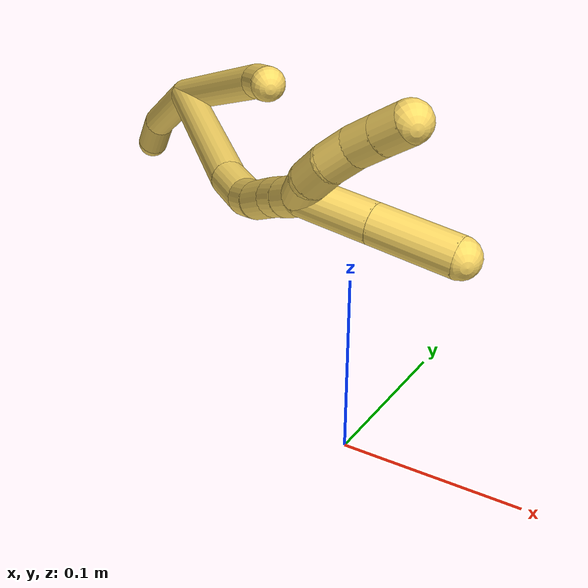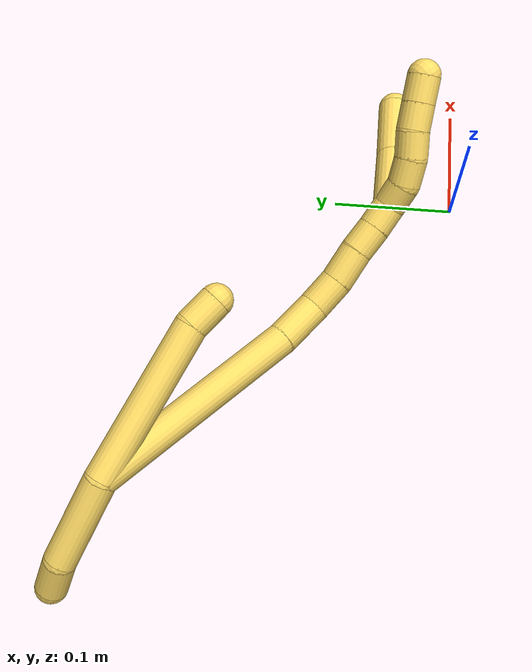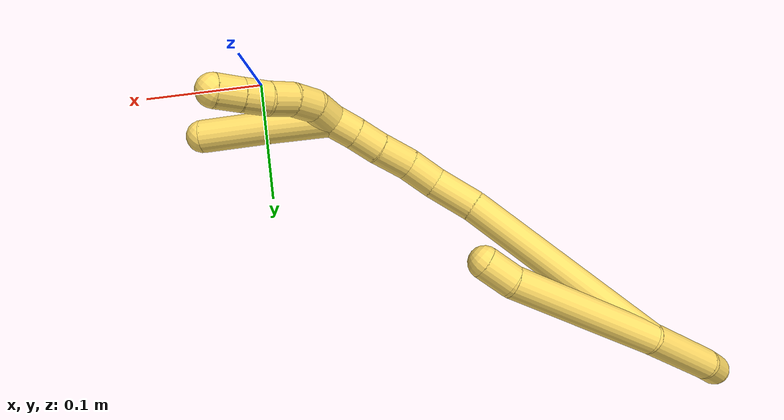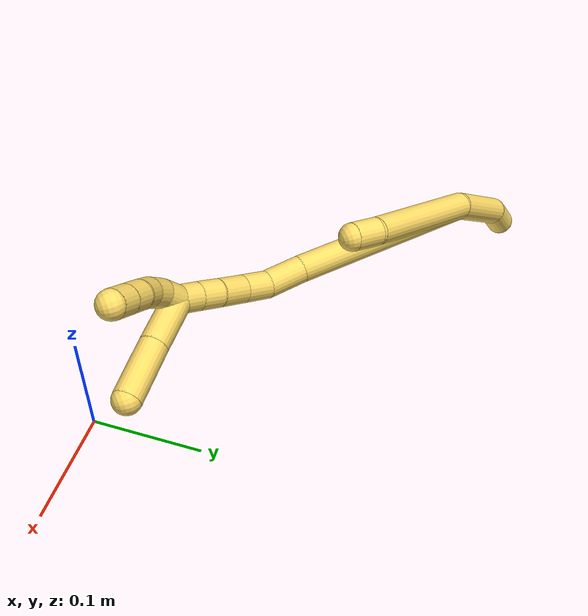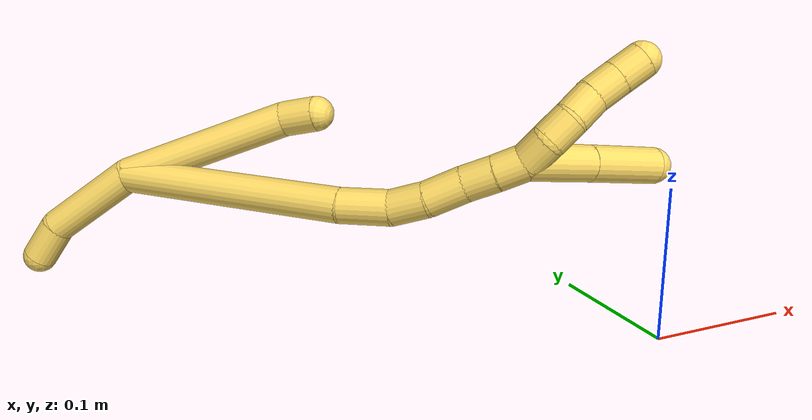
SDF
<sdf version="1.7">
 <world name="default">
  <model name="5">
   <static>0</static>
   <link name="5">
    <collision name="collision-cylinder-e_1_2_8">
     <pose>0.028881 0.011738 -0.05413 -2.92805 0.480636 -2.31698</pose>
     <geometry><cylinder><radius>0.0125</radius><length>0.124932</length></cylinder></geometry>
     <surface>
      <friction><ode><mu>1.16</mu><mu2>1.16</mu2><slip1>0</slip1><slip2>0</slip2></ode></friction>
      <contact><ode><kp>1e+06</kp><kd>1</kd><max_vel>0</max_vel><min_depth>0.001</min_depth></ode></contact>
     </surface>
    </collision>
    <visual name="visual-cylinder-e_1_2_8">
     <pose>0.028881 0.011738 -0.05413 -2.92805 0.480636 -2.31698</pose>
     <geometry><cylinder><radius>0.0125</radius><length>0.124932</length></cylinder></geometry>
     <material><ambient>1 0.858824 0.4 1</ambient></material>
    </visual>
    <collision name="collision-cylinder-e_2_8_6">
     <pose>0.061183 0.024006 -0.120307 -3.09767 0.276515 -2.82849</pose>
     <geometry><cylinder><radius>0.0125</radius><length>0.025068</length></cylinder></geometry>
     <surface>
      <friction><ode><mu>1.16</mu><mu2>1.16</mu2><slip1>0</slip1><slip2>0</slip2></ode></friction>
      <contact><ode><kp>1e+06</kp><kd>1</kd><max_vel>0</max_vel><min_depth>0.001</min_depth></ode></contact>
     </surface>
    </collision>
    <visual name="visual-cylinder-e_2_8_6">
     <pose>0.061183 0.024006 -0.120307 -3.09767 0.276515 -2.82849</pose>
     <geometry><cylinder><radius>0.0125</radius><length>0.025068</length></cylinder></geometry>
     <material><ambient>1 0.858824 0.4 1</ambient></material>
    </visual>
    <collision name="collision-cylinder-e_1_2_9">
     <pose>-0.023364 -0.002156 0.026361 0.081609 -0.723555 -0.030898</pose>
     <geometry><cylinder><radius>0.0125</radius><length>0.070581</length></cylinder></geometry>
     <surface>
      <friction><ode><mu>1.16</mu><mu2>1.16</mu2><slip1>0</slip1><slip2>0</slip2></ode></friction>
      <contact><ode><kp>1e+06</kp><kd>1</kd><max_vel>0</max_vel><min_depth>0.001</min_depth></ode></contact>
     </surface>
    </collision>
    <visual name="visual-cylinder-e_1_2_9">
     <pose>-0.023364 -0.002156 0.026361 0.081609 -0.723555 -0.030898</pose>
     <geometry><cylinder><radius>0.0125</radius><length>0.070581</length></cylinder></geometry>
     <material><ambient>1 0.858824 0.4 1</ambient></material>
    </visual>
    <collision name="collision-cylinder-e_2_9_5">
     <pose>-0.05933 -0.002926 0.060181 -0.183684 -1.02883 0.104011</pose>
     <geometry><cylinder><radius>0.0125</radius><length>0.029419</length></cylinder></geometry>
     <surface>
      <friction><ode><mu>1.16</mu><mu2>1.16</mu2><slip1>0</slip1><slip2>0</slip2></ode></friction>
      <contact><ode><kp>1e+06</kp><kd>1</kd><max_vel>0</max_vel><min_depth>0.001</min_depth></ode></contact>
     </surface>
    </collision>
    <visual name="visual-cylinder-e_2_9_5">
     <pose>-0.05933 -0.002926 0.060181 -0.183684 -1.02883 0.104011</pose>
     <geometry><cylinder><radius>0.0125</radius><length>0.029419</length></cylinder></geometry>
     <material><ambient>1 0.858824 0.4 1</ambient></material>
    </visual>
    <collision name="collision-cylinder-e_1_2_10">
     <pose>0.002029 0.00534 -0.084245 -3.07829 0.024036 -0.725593</pose>
     <geometry><cylinder><radius>0.0125</radius><length>0.168878</length></cylinder></geometry>
     <surface>
      <friction><ode><mu>1.16</mu><mu2>1.16</mu2><slip1>0</slip1><slip2>0</slip2></ode></friction>
      <contact><ode><kp>1e+06</kp><kd>1</kd><max_vel>0</max_vel><min_depth>0.001</min_depth></ode></contact>
     </surface>
    </collision>
    <visual name="visual-cylinder-e_1_2_10">
     <pose>0.002029 0.00534 -0.084245 -3.07829 0.024036 -0.725593</pose>
     <geometry><cylinder><radius>0.0125</radius><length>0.168878</length></cylinder></geometry>
     <material><ambient>1 0.858824 0.4 1</ambient></material>
    </visual>
    <collision name="collision-cylinder-e_2_10_11">
     <pose>0.0061 0.013359 -0.186038 -2.99011 0.114504 -1.29376</pose>
     <geometry><cylinder><radius>0.0125</radius><length>0.035734</length></cylinder></geometry>
     <surface>
      <friction><ode><mu>1.16</mu><mu2>1.16</mu2><slip1>0</slip1><slip2>0</slip2></ode></friction>
      <contact><ode><kp>1e+06</kp><kd>1</kd><max_vel>0</max_vel><min_depth>0.001</min_depth></ode></contact>
     </surface>
    </collision>
    <visual name="visual-cylinder-e_2_10_11">
     <pose>0.0061 0.013359 -0.186038 -2.99011 0.114504 -1.29376</pose>
     <geometry><cylinder><radius>0.0125</radius><length>0.035734</length></cylinder></geometry>
     <material><ambient>1 0.858824 0.4 1</ambient></material>
    </visual>
    <collision name="collision-cylinder-e_3_11_12">
     <pose>0.012903 0.01629 -0.21563 -3.12061 0.376331 -3.0315</pose>
     <geometry><cylinder><radius>0.0125</radius><length>0.025909</length></cylinder></geometry>
     <surface>
      <friction><ode><mu>1.16</mu><mu2>1.16</mu2><slip1>0</slip1><slip2>0</slip2></ode></friction>
      <contact><ode><kp>1e+06</kp><kd>1</kd><max_vel>0</max_vel><min_depth>0.001</min_depth></ode></contact>
     </surface>
    </collision>
    <visual name="visual-cylinder-e_3_11_12">
     <pose>0.012903 0.01629 -0.21563 -3.12061 0.376331 -3.0315</pose>
     <geometry><cylinder><radius>0.0125</radius><length>0.025909</length></cylinder></geometry>
     <material><ambient>1 0.858824 0.4 1</ambient></material>
    </visual>
    <collision name="collision-cylinder-e_4_12_13">
     <pose>0.024666 0.017832 -0.239339 -3.03152 0.537985 -2.74711</pose>
     <geometry><cylinder><radius>0.0125</radius><length>0.02733</length></cylinder></geometry>
     <surface>
      <friction><ode><mu>1.16</mu><mu2>1.16</mu2><slip1>0</slip1><slip2>0</slip2></ode></friction>
      <contact><ode><kp>1e+06</kp><kd>1</kd><max_vel>0</max_vel><min_depth>0.001</min_depth></ode></contact>
     </surface>
    </collision>
    <visual name="visual-cylinder-e_4_12_13">
     <pose>0.024666 0.017832 -0.239339 -3.03152 0.537985 -2.74711</pose>
     <geometry><cylinder><radius>0.0125</radius><length>0.02733</length></cylinder></geometry>
     <material><ambient>1 0.858824 0.4 1</ambient></material>
    </visual>
    <collision name="collision-cylinder-e_5_13_14">
     <pose>0.036561 0.019615 -0.260734 -3.09089 0.465385 -2.9284</pose>
     <geometry><cylinder><radius>0.0125</radius><length>0.021807</length></cylinder></geometry>
     <surface>
      <friction><ode><mu>1.16</mu><mu2>1.16</mu2><slip1>0</slip1><slip2>0</slip2></ode></friction>
      <contact><ode><kp>1e+06</kp><kd>1</kd><max_vel>0</max_vel><min_depth>0.001</min_depth></ode></contact>
     </surface>
    </collision>
    <visual name="visual-cylinder-e_5_13_14">
     <pose>0.036561 0.019615 -0.260734 -3.09089 0.465385 -2.9284</pose>
     <geometry><cylinder><radius>0.0125</radius><length>0.021807</length></cylinder></geometry>
     <material><ambient>1 0.858824 0.4 1</ambient></material>
    </visual>
    <collision name="collision-cylinder-e_6_14_1">
     <pose>0.046405 0.020982 -0.279307 -3.04314 0.50842 -2.76684</pose>
     <geometry><cylinder><radius>0.0125</radius><length>0.020342</length></cylinder></geometry>
     <surface>
      <friction><ode><mu>1.16</mu><mu2>1.16</mu2><slip1>0</slip1><slip2>0</slip2></ode></friction>
      <contact><ode><kp>1e+06</kp><kd>1</kd><max_vel>0</max_vel><min_depth>0.001</min_depth></ode></contact>
     </surface>
    </collision>
    <visual name="visual-cylinder-e_6_14_1">
     <pose>0.046405 0.020982 -0.279307 -3.04314 0.50842 -2.76684</pose>
     <geometry><cylinder><radius>0.0125</radius><length>0.020342</length></cylinder></geometry>
     <material><ambient>1 0.858824 0.4 1</ambient></material>
    </visual>
    <collision name="collision-cylinder-e_1_1_15">
     <pose>0.058893 0.020222 -0.294515 2.89055 0.853575 2.60023</pose>
     <geometry><cylinder><radius>0.0125</radius><length>0.02</length></cylinder></geometry>
     <surface>
      <friction><ode><mu>1.16</mu><mu2>1.16</mu2><slip1>0</slip1><slip2>0</slip2></ode></friction>
      <contact><ode><kp>1e+06</kp><kd>1</kd><max_vel>0</max_vel><min_depth>0.001</min_depth></ode></contact>
     </surface>
    </collision>
    <visual name="visual-cylinder-e_1_1_15">
     <pose>0.058893 0.020222 -0.294515 2.89055 0.853575 2.60023</pose>
     <geometry><cylinder><radius>0.0125</radius><length>0.02</length></cylinder></geometry>
     <material><ambient>1 0.858824 0.4 1</ambient></material>
    </visual>
    <collision name="collision-cylinder-e_2_15_16">
     <pose>0.074527 0.020177 -0.306531 -2.86752 0.943745 -2.61375</pose>
     <geometry><cylinder><radius>0.0125</radius><length>0.02</length></cylinder></geometry>
     <surface>
      <friction><ode><mu>1.16</mu><mu2>1.16</mu2><slip1>0</slip1><slip2>0</slip2></ode></friction>
      <contact><ode><kp>1e+06</kp><kd>1</kd><max_vel>0</max_vel><min_depth>0.001</min_depth></ode></contact>
     </surface>
    </collision>
    <visual name="visual-cylinder-e_2_15_16">
     <pose>0.074527 0.020177 -0.306531 -2.86752 0.943745 -2.61375</pose>
     <geometry><cylinder><radius>0.0125</radius><length>0.02</length></cylinder></geometry>
     <material><ambient>1 0.858824 0.4 1</ambient></material>
    </visual>
    <collision name="collision-cylinder-e_3_16_17">
     <pose>0.090692 0.025355 -0.316872 -2.48862 0.938758 -1.96427</pose>
     <geometry><cylinder><radius>0.0125</radius><length>0.02</length></cylinder></geometry>
     <surface>
      <friction><ode><mu>1.16</mu><mu2>1.16</mu2><slip1>0</slip1><slip2>0</slip2></ode></friction>
      <contact><ode><kp>1e+06</kp><kd>1</kd><max_vel>0</max_vel><min_depth>0.001</min_depth></ode></contact>
     </surface>
    </collision>
    <visual name="visual-cylinder-e_3_16_17">
     <pose>0.090692 0.025355 -0.316872 -2.48862 0.938758 -1.96427</pose>
     <geometry><cylinder><radius>0.0125</radius><length>0.02</length></cylinder></geometry>
     <material><ambient>1 0.858824 0.4 1</ambient></material>
    </visual>
    <collision name="collision-cylinder-e_4_17_18">
     <pose>0.105874 0.032331 -0.327723 -2.63877 0.79138 -2.03903</pose>
     <geometry><cylinder><radius>0.0125</radius><length>0.02</length></cylinder></geometry>
     <surface>
      <friction><ode><mu>1.16</mu><mu2>1.16</mu2><slip1>0</slip1><slip2>0</slip2></ode></friction>
      <contact><ode><kp>1e+06</kp><kd>1</kd><max_vel>0</max_vel><min_depth>0.001</min_depth></ode></contact>
     </surface>
    </collision>
    <visual name="visual-cylinder-e_4_17_18">
     <pose>0.105874 0.032331 -0.327723 -2.63877 0.79138 -2.03903</pose>
     <geometry><cylinder><radius>0.0125</radius><length>0.02</length></cylinder></geometry>
     <material><ambient>1 0.858824 0.4 1</ambient></material>
    </visual>
    <collision name="collision-cylinder-e_5_18_4">
     <pose>0.120009 0.039073 -0.340162 -2.65098 0.778447 -2.04556</pose>
     <geometry><cylinder><radius>0.0125</radius><length>0.02</length></cylinder></geometry>
     <surface>
      <friction><ode><mu>1.16</mu><mu2>1.16</mu2><slip1>0</slip1><slip2>0</slip2></ode></friction>
      <contact><ode><kp>1e+06</kp><kd>1</kd><max_vel>0</max_vel><min_depth>0.001</min_depth></ode></contact>
     </surface>
    </collision>
    <visual name="visual-cylinder-e_5_18_4">
     <pose>0.120009 0.039073 -0.340162 -2.65098 0.778447 -2.04556</pose>
     <geometry><cylinder><radius>0.0125</radius><length>0.02</length></cylinder></geometry>
     <material><ambient>1 0.858824 0.4 1</ambient></material>
    </visual>
    <collision name="collision-cylinder-e_1_1_19">
     <pose>0.054686 0.038835 -0.304578 -2.33973 0.140015 -0.327881</pose>
     <geometry><cylinder><radius>0.0125</radius><length>0.047723</length></cylinder></geometry>
     <surface>
      <friction><ode><mu>1.16</mu><mu2>1.16</mu2><slip1>0</slip1><slip2>0</slip2></ode></friction>
      <contact><ode><kp>1e+06</kp><kd>1</kd><max_vel>0</max_vel><min_depth>0.001</min_depth></ode></contact>
     </surface>
    </collision>
    <visual name="visual-cylinder-e_1_1_19">
     <pose>0.054686 0.038835 -0.304578 -2.33973 0.140015 -0.327881</pose>
     <geometry><cylinder><radius>0.0125</radius><length>0.047723</length></cylinder></geometry>
     <material><ambient>1 0.858824 0.4 1</ambient></material>
    </visual>
    <collision name="collision-cylinder-e_2_19_3">
     <pose>0.061427 0.074799 -0.33865 -2.31958 0.130871 -0.298475</pose>
     <geometry><cylinder><radius>0.0125</radius><length>0.052277</length></cylinder></geometry>
     <surface>
      <friction><ode><mu>1.16</mu><mu2>1.16</mu2><slip1>0</slip1><slip2>0</slip2></ode></friction>
      <contact><ode><kp>1e+06</kp><kd>1</kd><max_vel>0</max_vel><min_depth>0.001</min_depth></ode></contact>
     </surface>
    </collision>
    <visual name="visual-cylinder-e_2_19_3">
     <pose>0.061427 0.074799 -0.33865 -2.31958 0.130871 -0.298475</pose>
     <geometry><cylinder><radius>0.0125</radius><length>0.052277</length></cylinder></geometry>
     <material><ambient>1 0.858824 0.4 1</ambient></material>
    </visual>
    <collision name="collision-sphere-3">
     <pose>0.064838 0.093782 -0.356292 0 -0 0</pose>
     <geometry><sphere><radius>0.0125</radius></sphere></geometry>
     <surface>
      <friction><ode><mu>1.16</mu><mu2>1.16</mu2><slip1>0</slip1><slip2>0</slip2></ode></friction>
      <contact><ode><kp>1e+06</kp><kd>1</kd><max_vel>0</max_vel><min_depth>0.001</min_depth></ode></contact>
     </surface>
    </collision>
    <visual name="visual-sphere-3">
     <pose>0.064838 0.093782 -0.356292 0 -0 0</pose>
     <geometry><sphere><radius>0.0125</radius></sphere></geometry>
     <material><ambient>1 0.858824 0.4 1</ambient></material>
    </visual>
    <collision name="collision-sphere-19">
     <pose>0.058016 0.055815 -0.321009 0 -0 0</pose>
     <geometry><sphere><radius>0.0125</radius></sphere></geometry>
     <surface>
      <friction><ode><mu>1.16</mu><mu2>1.16</mu2><slip1>0</slip1><slip2>0</slip2></ode></friction>
      <contact><ode><kp>1e+06</kp><kd>1</kd><max_vel>0</max_vel><min_depth>0.001</min_depth></ode></contact>
     </surface>
    </collision>
    <visual name="visual-sphere-19">
     <pose>0.058016 0.055815 -0.321009 0 -0 0</pose>
     <geometry><sphere><radius>0.0125</radius></sphere></geometry>
     <material><ambient>1 0.858824 0.4 1</ambient></material>
    </visual>
    <collision name="collision-sphere-10">
     <pose>0.004059 0.01068 -0.168491 0 -0 0</pose>
     <geometry><sphere><radius>0.0125</radius></sphere></geometry>
     <surface>
      <friction><ode><mu>1.16</mu><mu2>1.16</mu2><slip1>0</slip1><slip2>0</slip2></ode></friction>
      <contact><ode><kp>1e+06</kp><kd>1</kd><max_vel>0</max_vel><min_depth>0.001</min_depth></ode></contact>
     </surface>
    </collision>
    <visual name="visual-sphere-10">
     <pose>0.004059 0.01068 -0.168491 0 -0 0</pose>
     <geometry><sphere><radius>0.0125</radius></sphere></geometry>
     <material><ambient>1 0.858824 0.4 1</ambient></material>
    </visual>
    <collision name="collision-sphere-5">
     <pose>-0.071932 -0.00154 0.067641 0 -0 0</pose>
     <geometry><sphere><radius>0.0125</radius></sphere></geometry>
     <surface>
      <friction><ode><mu>1.16</mu><mu2>1.16</mu2><slip1>0</slip1><slip2>0</slip2></ode></friction>
      <contact><ode><kp>1e+06</kp><kd>1</kd><max_vel>0</max_vel><min_depth>0.001</min_depth></ode></contact>
     </surface>
    </collision>
    <visual name="visual-sphere-5">
     <pose>-0.071932 -0.00154 0.067641 0 -0 0</pose>
     <geometry><sphere><radius>0.0125</radius></sphere></geometry>
     <material><ambient>1 0.858824 0.4 1</ambient></material>
    </visual>
    <collision name="collision-sphere-6">
     <pose>0.064605 0.024535 -0.132354 0 -0 0</pose>
     <geometry><sphere><radius>0.0125</radius></sphere></geometry>
     <surface>
      <friction><ode><mu>1.16</mu><mu2>1.16</mu2><slip1>0</slip1><slip2>0</slip2></ode></friction>
      <contact><ode><kp>1e+06</kp><kd>1</kd><max_vel>0</max_vel><min_depth>0.001</min_depth></ode></contact>
     </surface>
    </collision>
    <visual name="visual-sphere-6">
     <pose>0.064605 0.024535 -0.132354 0 -0 0</pose>
     <geometry><sphere><radius>0.0125</radius></sphere></geometry>
     <material><ambient>1 0.858824 0.4 1</ambient></material>
    </visual>
    <collision name="collision-sphere-9">
     <pose>-0.046728 -0.004312 0.052721 0 -0 0</pose>
     <geometry><sphere><radius>0.0125</radius></sphere></geometry>
     <surface>
      <friction><ode><mu>1.16</mu><mu2>1.16</mu2><slip1>0</slip1><slip2>0</slip2></ode></friction>
      <contact><ode><kp>1e+06</kp><kd>1</kd><max_vel>0</max_vel><min_depth>0.001</min_depth></ode></contact>
     </surface>
    </collision>
    <visual name="visual-sphere-9">
     <pose>-0.046728 -0.004312 0.052721 0 -0 0</pose>
     <geometry><sphere><radius>0.0125</radius></sphere></geometry>
     <material><ambient>1 0.858824 0.4 1</ambient></material>
    </visual>
    <collision name="collision-sphere-2">
     <geometry><sphere><radius>0.0125</radius></sphere></geometry>
     <surface>
      <friction><ode><mu>1.16</mu><mu2>1.16</mu2><slip1>0</slip1><slip2>0</slip2></ode></friction>
      <contact><ode><kp>1e+06</kp><kd>1</kd><max_vel>0</max_vel><min_depth>0.001</min_depth></ode></contact>
     </surface>
    </collision>
    <visual name="visual-sphere-2">
     <geometry><sphere><radius>0.0125</radius></sphere></geometry>
     <material><ambient>1 0.858824 0.4 1</ambient></material>
    </visual>
    <collision name="collision-sphere-8">
     <pose>0.057761 0.023477 -0.108261 0 -0 0</pose>
     <geometry><sphere><radius>0.0125</radius></sphere></geometry>
     <surface>
      <friction><ode><mu>1.16</mu><mu2>1.16</mu2><slip1>0</slip1><slip2>0</slip2></ode></friction>
      <contact><ode><kp>1e+06</kp><kd>1</kd><max_vel>0</max_vel><min_depth>0.001</min_depth></ode></contact>
     </surface>
    </collision>
    <visual name="visual-sphere-8">
     <pose>0.057761 0.023477 -0.108261 0 -0 0</pose>
     <geometry><sphere><radius>0.0125</radius></sphere></geometry>
     <material><ambient>1 0.858824 0.4 1</ambient></material>
    </visual>
    <collision name="collision-sphere-11">
     <pose>0.008142 0.016037 -0.203584 0 -0 0</pose>
     <geometry><sphere><radius>0.0125</radius></sphere></geometry>
     <surface>
      <friction><ode><mu>1.16</mu><mu2>1.16</mu2><slip1>0</slip1><slip2>0</slip2></ode></friction>
      <contact><ode><kp>1e+06</kp><kd>1</kd><max_vel>0</max_vel><min_depth>0.001</min_depth></ode></contact>
     </surface>
    </collision>
    <visual name="visual-sphere-11">
     <pose>0.008142 0.016037 -0.203584 0 -0 0</pose>
     <geometry><sphere><radius>0.0125</radius></sphere></geometry>
     <material><ambient>1 0.858824 0.4 1</ambient></material>
    </visual>
    <collision name="collision-sphere-12">
     <pose>0.017664 0.016543 -0.227675 0 -0 0</pose>
     <geometry><sphere><radius>0.0125</radius></sphere></geometry>
     <surface>
      <friction><ode><mu>1.16</mu><mu2>1.16</mu2><slip1>0</slip1><slip2>0</slip2></ode></friction>
      <contact><ode><kp>1e+06</kp><kd>1</kd><max_vel>0</max_vel><min_depth>0.001</min_depth></ode></contact>
     </surface>
    </collision>
    <visual name="visual-sphere-12">
     <pose>0.017664 0.016543 -0.227675 0 -0 0</pose>
     <geometry><sphere><radius>0.0125</radius></sphere></geometry>
     <material><ambient>1 0.858824 0.4 1</ambient></material>
    </visual>
    <collision name="collision-sphere-13">
     <pose>0.031667 0.019121 -0.251002 0 -0 0</pose>
     <geometry><sphere><radius>0.0125</radius></sphere></geometry>
     <surface>
      <friction><ode><mu>1.16</mu><mu2>1.16</mu2><slip1>0</slip1><slip2>0</slip2></ode></friction>
      <contact><ode><kp>1e+06</kp><kd>1</kd><max_vel>0</max_vel><min_depth>0.001</min_depth></ode></contact>
     </surface>
    </collision>
    <visual name="visual-sphere-13">
     <pose>0.031667 0.019121 -0.251002 0 -0 0</pose>
     <geometry><sphere><radius>0.0125</radius></sphere></geometry>
     <material><ambient>1 0.858824 0.4 1</ambient></material>
    </visual>
    <collision name="collision-sphere-14">
     <pose>0.041454 0.020109 -0.270465 0 -0 0</pose>
     <geometry><sphere><radius>0.0125</radius></sphere></geometry>
     <surface>
      <friction><ode><mu>1.16</mu><mu2>1.16</mu2><slip1>0</slip1><slip2>0</slip2></ode></friction>
      <contact><ode><kp>1e+06</kp><kd>1</kd><max_vel>0</max_vel><min_depth>0.001</min_depth></ode></contact>
     </surface>
    </collision>
    <visual name="visual-sphere-14">
     <pose>0.041454 0.020109 -0.270465 0 -0 0</pose>
     <geometry><sphere><radius>0.0125</radius></sphere></geometry>
     <material><ambient>1 0.858824 0.4 1</ambient></material>
    </visual>
    <collision name="collision-sphere-1">
     <pose>0.051356 0.021855 -0.288148 0 -0 0</pose>
     <geometry><sphere><radius>0.0125</radius></sphere></geometry>
     <surface>
      <friction><ode><mu>1.16</mu><mu2>1.16</mu2><slip1>0</slip1><slip2>0</slip2></ode></friction>
      <contact><ode><kp>1e+06</kp><kd>1</kd><max_vel>0</max_vel><min_depth>0.001</min_depth></ode></contact>
     </surface>
    </collision>
    <visual name="visual-sphere-1">
     <pose>0.051356 0.021855 -0.288148 0 -0 0</pose>
     <geometry><sphere><radius>0.0125</radius></sphere></geometry>
     <material><ambient>1 0.858824 0.4 1</ambient></material>
    </visual>
    <collision name="collision-sphere-18">
     <pose>0.112987 0.035719 -0.333882 0 -0 0</pose>
     <geometry><sphere><radius>0.0125</radius></sphere></geometry>
     <surface>
      <friction><ode><mu>1.16</mu><mu2>1.16</mu2><slip1>0</slip1><slip2>0</slip2></ode></friction>
      <contact><ode><kp>1e+06</kp><kd>1</kd><max_vel>0</max_vel><min_depth>0.001</min_depth></ode></contact>
     </surface>
    </collision>
    <visual name="visual-sphere-18">
     <pose>0.112987 0.035719 -0.333882 0 -0 0</pose>
     <geometry><sphere><radius>0.0125</radius></sphere></geometry>
     <material><ambient>1 0.858824 0.4 1</ambient></material>
    </visual>
    <collision name="collision-sphere-15">
     <pose>0.066429 0.018589 -0.300882 0 -0 0</pose>
     <geometry><sphere><radius>0.0125</radius></sphere></geometry>
     <surface>
      <friction><ode><mu>1.16</mu><mu2>1.16</mu2><slip1>0</slip1><slip2>0</slip2></ode></friction>
      <contact><ode><kp>1e+06</kp><kd>1</kd><max_vel>0</max_vel><min_depth>0.001</min_depth></ode></contact>
     </surface>
    </collision>
    <visual name="visual-sphere-15">
     <pose>0.066429 0.018589 -0.300882 0 -0 0</pose>
     <geometry><sphere><radius>0.0125</radius></sphere></geometry>
     <material><ambient>1 0.858824 0.4 1</ambient></material>
    </visual>
    <collision name="collision-sphere-16">
     <pose>0.082624 0.021766 -0.312179 0 -0 0</pose>
     <geometry><sphere><radius>0.0125</radius></sphere></geometry>
     <surface>
      <friction><ode><mu>1.16</mu><mu2>1.16</mu2><slip1>0</slip1><slip2>0</slip2></ode></friction>
      <contact><ode><kp>1e+06</kp><kd>1</kd><max_vel>0</max_vel><min_depth>0.001</min_depth></ode></contact>
     </surface>
    </collision>
    <visual name="visual-sphere-16">
     <pose>0.082624 0.021766 -0.312179 0 -0 0</pose>
     <geometry><sphere><radius>0.0125</radius></sphere></geometry>
     <material><ambient>1 0.858824 0.4 1</ambient></material>
    </visual>
    <collision name="collision-sphere-17">
     <pose>0.098761 0.028944 -0.321564 0 -0 0</pose>
     <geometry><sphere><radius>0.0125</radius></sphere></geometry>
     <surface>
      <friction><ode><mu>1.16</mu><mu2>1.16</mu2><slip1>0</slip1><slip2>0</slip2></ode></friction>
      <contact><ode><kp>1e+06</kp><kd>1</kd><max_vel>0</max_vel><min_depth>0.001</min_depth></ode></contact>
     </surface>
    </collision>
    <visual name="visual-sphere-17">
     <pose>0.098761 0.028944 -0.321564 0 -0 0</pose>
     <geometry><sphere><radius>0.0125</radius></sphere></geometry>
     <material><ambient>1 0.858824 0.4 1</ambient></material>
    </visual>
    <collision name="collision-sphere-4">
     <pose>0.127031 0.042428 -0.346442 0 -0 0</pose>
     <geometry><sphere><radius>0.0125</radius></sphere></geometry>
     <surface>
      <friction><ode><mu>1.16</mu><mu2>1.16</mu2><slip1>0</slip1><slip2>0</slip2></ode></friction>
      <contact><ode><kp>1e+06</kp><kd>1</kd><max_vel>0</max_vel><min_depth>0.001</min_depth></ode></contact>
     </surface>
    </collision>
    <visual name="visual-sphere-4">
     <pose>0.127031 0.042428 -0.346442 0 -0 0</pose>
     <geometry><sphere><radius>0.0125</radius></sphere></geometry>
     <material><ambient>1 0.858824 0.4 1</ambient></material>
    </visual>
    <inertial>
     <pose>0.026505 0.017973 -0.152631 0 -0 0</pose>
     <mass>0.75</mass>
     <inertia>
      <ixx>-0.000145</ixx>
      <ixy>0</ixy>
      <ixz>0</ixz>
      <iyy>-0.000534</iyy>
      <iyz>0</iyz>
      <izz>-0.000191</izz>
     </inertia>
    </inertial>
   </link>
   <pose>-0.286208 0.252645 0.077098 -1.46412 -1.24526 0.630325</pose>
  </model>
 </world>
</sdf>
